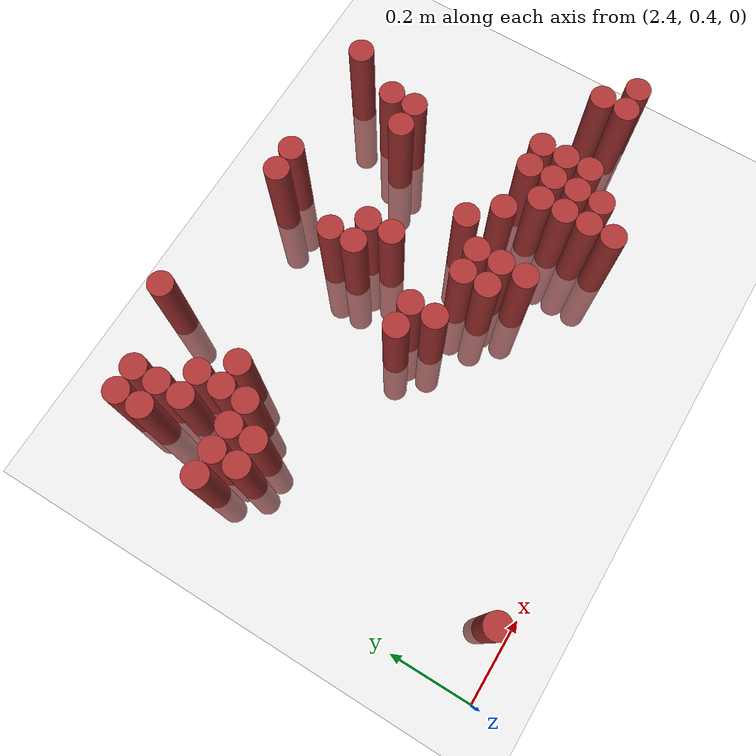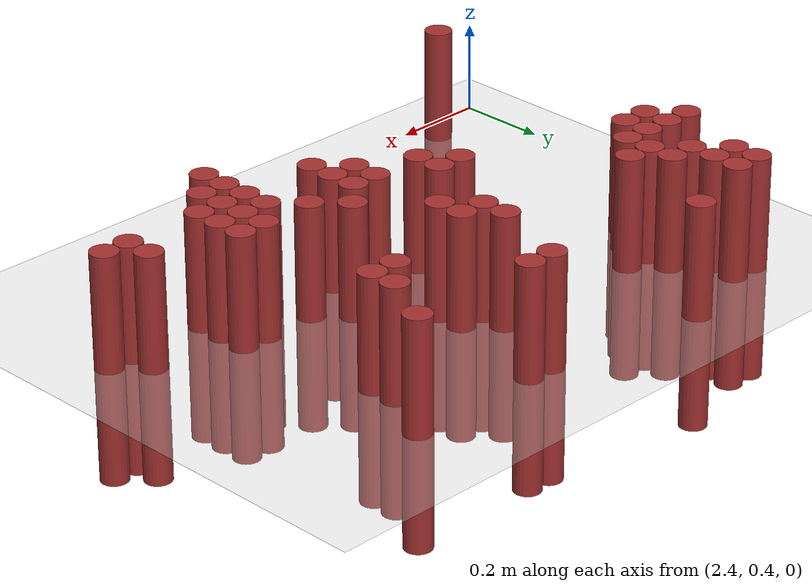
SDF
<sdf version="1.6">
 <world name="default">
  <model name="ground_plane">
   <static>1</static>
   <link name="link">
    <collision name="collision">
     <geometry><plane><normal>0 0 1</normal><size>100 100</size></plane></geometry>
     <surface><friction><ode><mu>100</mu><mu2>50</mu2></ode></friction></surface>
    </collision>
    <visual name="visual">
     <cast_shadows>0</cast_shadows>
     <geometry><plane><normal>0 0 1</normal><size>100 100</size></plane></geometry>
     <material>
      <script><uri>file://media/materials/scripts/gazebo.material</uri><name>Gazebo/Grey</name></script>
     </material>
    </visual>
   </link>
  </model>
  <model name="unit_cylinder_154">
   <static>1</static>
   <pose>2.790000 1.410000 0.000000 0.000000 0.000000 0.000000</pose>
   <link name="link">
    <inertial>
     <mass>1</mass>
     <inertia><ixx>0.145833</ixx><ixy>0</ixy><ixz>0</ixz><iyy>0.145833</iyy><iyz>0</iyz><izz>0.125</izz></inertia>
    </inertial>
    <collision name="collision">
     <geometry><cylinder><radius>0.030000</radius><length>0.5</length></cylinder></geometry>
    </collision>
    <visual name="visual">
     <geometry><cylinder><radius>0.030000</radius><length>0.5</length></cylinder></geometry>
     <material>
      <ambient>0.648000 0.192000 0.192000 1</ambient>
      <diffuse>0.648000 0.192000 0.192000 1</diffuse>
     </material>
     <material>
      <script><name>Gazebo/Grey</name><uri>file://media/materials/scripts/gazebo.material</uri></script>
     </material>
    </visual>
   </link>
  </model>
  <model name="unit_cylinder_160">
   <static>1</static>
   <pose>2.550000 1.350000 0.000000 0.000000 0.000000 0.000000</pose>
   <link name="link">
    <inertial>
     <mass>1</mass>
     <inertia><ixx>0.145833</ixx><ixy>0</ixy><ixz>0</ixz><iyy>0.145833</iyy><iyz>0</iyz><izz>0.125</izz></inertia>
    </inertial>
    <collision name="collision">
     <geometry><cylinder><radius>0.030000</radius><length>0.5</length></cylinder></geometry>
    </collision>
    <visual name="visual">
     <geometry><cylinder><radius>0.030000</radius><length>0.5</length></cylinder></geometry>
     <material>
      <ambient>0.648000 0.192000 0.192000 1</ambient>
      <diffuse>0.648000 0.192000 0.192000 1</diffuse>
     </material>
     <material>
      <script><name>Gazebo/Grey</name><uri>file://media/materials/scripts/gazebo.material</uri></script>
     </material>
    </visual>
   </link>
  </model>
  <model name="unit_cylinder_161">
   <static>1</static>
   <pose>2.610000 1.350000 0.000000 0.000000 0.000000 0.000000</pose>
   <link name="link">
    <inertial>
     <mass>1</mass>
     <inertia><ixx>0.145833</ixx><ixy>0</ixy><ixz>0</ixz><iyy>0.145833</iyy><iyz>0</iyz><izz>0.125</izz></inertia>
    </inertial>
    <collision name="collision">
     <geometry><cylinder><radius>0.030000</radius><length>0.5</length></cylinder></geometry>
    </collision>
    <visual name="visual">
     <geometry><cylinder><radius>0.030000</radius><length>0.5</length></cylinder></geometry>
     <material>
      <ambient>0.648000 0.192000 0.192000 1</ambient>
      <diffuse>0.648000 0.192000 0.192000 1</diffuse>
     </material>
     <material>
      <script><name>Gazebo/Grey</name><uri>file://media/materials/scripts/gazebo.material</uri></script>
     </material>
    </visual>
   </link>
  </model>
  <model name="unit_cylinder_162">
   <static>1</static>
   <pose>3.150000 1.350000 0.000000 0.000000 0.000000 0.000000</pose>
   <link name="link">
    <inertial>
     <mass>1</mass>
     <inertia><ixx>0.145833</ixx><ixy>0</ixy><ixz>0</ixz><iyy>0.145833</iyy><iyz>0</iyz><izz>0.125</izz></inertia>
    </inertial>
    <collision name="collision">
     <geometry><cylinder><radius>0.030000</radius><length>0.5</length></cylinder></geometry>
    </collision>
    <visual name="visual">
     <geometry><cylinder><radius>0.030000</radius><length>0.5</length></cylinder></geometry>
     <material>
      <ambient>0.648000 0.192000 0.192000 1</ambient>
      <diffuse>0.648000 0.192000 0.192000 1</diffuse>
     </material>
     <material>
      <script><name>Gazebo/Grey</name><uri>file://media/materials/scripts/gazebo.material</uri></script>
     </material>
    </visual>
   </link>
  </model>
  <model name="unit_cylinder_163">
   <static>1</static>
   <pose>3.210000 1.350000 0.000000 0.000000 0.000000 0.000000</pose>
   <link name="link">
    <inertial>
     <mass>1</mass>
     <inertia><ixx>0.145833</ixx><ixy>0</ixy><ixz>0</ixz><iyy>0.145833</iyy><iyz>0</iyz><izz>0.125</izz></inertia>
    </inertial>
    <collision name="collision">
     <geometry><cylinder><radius>0.030000</radius><length>0.5</length></cylinder></geometry>
    </collision>
    <visual name="visual">
     <geometry><cylinder><radius>0.030000</radius><length>0.5</length></cylinder></geometry>
     <material>
      <ambient>0.648000 0.192000 0.192000 1</ambient>
      <diffuse>0.648000 0.192000 0.192000 1</diffuse>
     </material>
     <material>
      <script><name>Gazebo/Grey</name><uri>file://media/materials/scripts/gazebo.material</uri></script>
     </material>
    </visual>
   </link>
  </model>
  <model name="unit_cylinder_164">
   <static>1</static>
   <pose>3.510000 1.350000 0.000000 0.000000 0.000000 0.000000</pose>
   <link name="link">
    <inertial>
     <mass>1</mass>
     <inertia><ixx>0.145833</ixx><ixy>0</ixy><ixz>0</ixz><iyy>0.145833</iyy><iyz>0</iyz><izz>0.125</izz></inertia>
    </inertial>
    <collision name="collision">
     <geometry><cylinder><radius>0.030000</radius><length>0.5</length></cylinder></geometry>
    </collision>
    <visual name="visual">
     <geometry><cylinder><radius>0.030000</radius><length>0.5</length></cylinder></geometry>
     <material>
      <ambient>0.648000 0.192000 0.192000 1</ambient>
      <diffuse>0.648000 0.192000 0.192000 1</diffuse>
     </material>
     <material>
      <script><name>Gazebo/Grey</name><uri>file://media/materials/scripts/gazebo.material</uri></script>
     </material>
    </visual>
   </link>
  </model>
  <model name="unit_cylinder_169">
   <static>1</static>
   <pose>2.550000 1.290000 0.000000 0.000000 0.000000 0.000000</pose>
   <link name="link">
    <inertial>
     <mass>1</mass>
     <inertia><ixx>0.145833</ixx><ixy>0</ixy><ixz>0</ixz><iyy>0.145833</iyy><iyz>0</iyz><izz>0.125</izz></inertia>
    </inertial>
    <collision name="collision">
     <geometry><cylinder><radius>0.030000</radius><length>0.5</length></cylinder></geometry>
    </collision>
    <visual name="visual">
     <geometry><cylinder><radius>0.030000</radius><length>0.5</length></cylinder></geometry>
     <material>
      <ambient>0.648000 0.192000 0.192000 1</ambient>
      <diffuse>0.648000 0.192000 0.192000 1</diffuse>
     </material>
     <material>
      <script><name>Gazebo/Grey</name><uri>file://media/materials/scripts/gazebo.material</uri></script>
     </material>
    </visual>
   </link>
  </model>
  <model name="unit_cylinder_170">
   <static>1</static>
   <pose>2.610000 1.290000 0.000000 0.000000 0.000000 0.000000</pose>
   <link name="link">
    <inertial>
     <mass>1</mass>
     <inertia><ixx>0.145833</ixx><ixy>0</ixy><ixz>0</ixz><iyy>0.145833</iyy><iyz>0</iyz><izz>0.125</izz></inertia>
    </inertial>
    <collision name="collision">
     <geometry><cylinder><radius>0.030000</radius><length>0.5</length></cylinder></geometry>
    </collision>
    <visual name="visual">
     <geometry><cylinder><radius>0.030000</radius><length>0.5</length></cylinder></geometry>
     <material>
      <ambient>0.648000 0.192000 0.192000 1</ambient>
      <diffuse>0.648000 0.192000 0.192000 1</diffuse>
     </material>
     <material>
      <script><name>Gazebo/Grey</name><uri>file://media/materials/scripts/gazebo.material</uri></script>
     </material>
    </visual>
   </link>
  </model>
  <model name="unit_cylinder_175">
   <static>1</static>
   <pose>2.610000 1.230000 0.000000 0.000000 0.000000 0.000000</pose>
   <link name="link">
    <inertial>
     <mass>1</mass>
     <inertia><ixx>0.145833</ixx><ixy>0</ixy><ixz>0</ixz><iyy>0.145833</iyy><iyz>0</iyz><izz>0.125</izz></inertia>
    </inertial>
    <collision name="collision">
     <geometry><cylinder><radius>0.030000</radius><length>0.5</length></cylinder></geometry>
    </collision>
    <visual name="visual">
     <geometry><cylinder><radius>0.030000</radius><length>0.5</length></cylinder></geometry>
     <material>
      <ambient>0.648000 0.192000 0.192000 1</ambient>
      <diffuse>0.648000 0.192000 0.192000 1</diffuse>
     </material>
     <material>
      <script><name>Gazebo/Grey</name><uri>file://media/materials/scripts/gazebo.material</uri></script>
     </material>
    </visual>
   </link>
  </model>
  <model name="unit_cylinder_176">
   <static>1</static>
   <pose>2.670000 1.230000 0.000000 0.000000 0.000000 0.000000</pose>
   <link name="link">
    <inertial>
     <mass>1</mass>
     <inertia><ixx>0.145833</ixx><ixy>0</ixy><ixz>0</ixz><iyy>0.145833</iyy><iyz>0</iyz><izz>0.125</izz></inertia>
    </inertial>
    <collision name="collision">
     <geometry><cylinder><radius>0.030000</radius><length>0.5</length></cylinder></geometry>
    </collision>
    <visual name="visual">
     <geometry><cylinder><radius>0.030000</radius><length>0.5</length></cylinder></geometry>
     <material>
      <ambient>0.648000 0.192000 0.192000 1</ambient>
      <diffuse>0.648000 0.192000 0.192000 1</diffuse>
     </material>
     <material>
      <script><name>Gazebo/Grey</name><uri>file://media/materials/scripts/gazebo.material</uri></script>
     </material>
    </visual>
   </link>
  </model>
  <model name="unit_cylinder_177">
   <static>1</static>
   <pose>3.450000 1.230000 0.000000 0.000000 0.000000 0.000000</pose>
   <link name="link">
    <inertial>
     <mass>1</mass>
     <inertia><ixx>0.145833</ixx><ixy>0</ixy><ixz>0</ixz><iyy>0.145833</iyy><iyz>0</iyz><izz>0.125</izz></inertia>
    </inertial>
    <collision name="collision">
     <geometry><cylinder><radius>0.030000</radius><length>0.5</length></cylinder></geometry>
    </collision>
    <visual name="visual">
     <geometry><cylinder><radius>0.030000</radius><length>0.5</length></cylinder></geometry>
     <material>
      <ambient>0.648000 0.192000 0.192000 1</ambient>
      <diffuse>0.648000 0.192000 0.192000 1</diffuse>
     </material>
     <material>
      <script><name>Gazebo/Grey</name><uri>file://media/materials/scripts/gazebo.material</uri></script>
     </material>
    </visual>
   </link>
  </model>
  <model name="unit_cylinder_181">
   <static>1</static>
   <pose>2.670000 1.170000 0.000000 0.000000 0.000000 0.000000</pose>
   <link name="link">
    <inertial>
     <mass>1</mass>
     <inertia><ixx>0.145833</ixx><ixy>0</ixy><ixz>0</ixz><iyy>0.145833</iyy><iyz>0</iyz><izz>0.125</izz></inertia>
    </inertial>
    <collision name="collision">
     <geometry><cylinder><radius>0.030000</radius><length>0.5</length></cylinder></geometry>
    </collision>
    <visual name="visual">
     <geometry><cylinder><radius>0.030000</radius><length>0.5</length></cylinder></geometry>
     <material>
      <ambient>0.648000 0.192000 0.192000 1</ambient>
      <diffuse>0.648000 0.192000 0.192000 1</diffuse>
     </material>
     <material>
      <script><name>Gazebo/Grey</name><uri>file://media/materials/scripts/gazebo.material</uri></script>
     </material>
    </visual>
   </link>
  </model>
  <model name="unit_cylinder_182">
   <static>1</static>
   <pose>2.730000 1.170000 0.000000 0.000000 0.000000 0.000000</pose>
   <link name="link">
    <inertial>
     <mass>1</mass>
     <inertia><ixx>0.145833</ixx><ixy>0</ixy><ixz>0</ixz><iyy>0.145833</iyy><iyz>0</iyz><izz>0.125</izz></inertia>
    </inertial>
    <collision name="collision">
     <geometry><cylinder><radius>0.030000</radius><length>0.5</length></cylinder></geometry>
    </collision>
    <visual name="visual">
     <geometry><cylinder><radius>0.030000</radius><length>0.5</length></cylinder></geometry>
     <material>
      <ambient>0.648000 0.192000 0.192000 1</ambient>
      <diffuse>0.648000 0.192000 0.192000 1</diffuse>
     </material>
     <material>
      <script><name>Gazebo/Grey</name><uri>file://media/materials/scripts/gazebo.material</uri></script>
     </material>
    </visual>
   </link>
  </model>
  <model name="unit_cylinder_183">
   <static>1</static>
   <pose>3.090000 1.170000 0.000000 0.000000 0.000000 0.000000</pose>
   <link name="link">
    <inertial>
     <mass>1</mass>
     <inertia><ixx>0.145833</ixx><ixy>0</ixy><ixz>0</ixz><iyy>0.145833</iyy><iyz>0</iyz><izz>0.125</izz></inertia>
    </inertial>
    <collision name="collision">
     <geometry><cylinder><radius>0.030000</radius><length>0.5</length></cylinder></geometry>
    </collision>
    <visual name="visual">
     <geometry><cylinder><radius>0.030000</radius><length>0.5</length></cylinder></geometry>
     <material>
      <ambient>0.648000 0.192000 0.192000 1</ambient>
      <diffuse>0.648000 0.192000 0.192000 1</diffuse>
     </material>
     <material>
      <script><name>Gazebo/Grey</name><uri>file://media/materials/scripts/gazebo.material</uri></script>
     </material>
    </visual>
   </link>
  </model>
  <model name="unit_cylinder_184">
   <static>1</static>
   <pose>3.390000 1.170000 0.000000 0.000000 0.000000 0.000000</pose>
   <link name="link">
    <inertial>
     <mass>1</mass>
     <inertia><ixx>0.145833</ixx><ixy>0</ixy><ixz>0</ixz><iyy>0.145833</iyy><iyz>0</iyz><izz>0.125</izz></inertia>
    </inertial>
    <collision name="collision">
     <geometry><cylinder><radius>0.030000</radius><length>0.5</length></cylinder></geometry>
    </collision>
    <visual name="visual">
     <geometry><cylinder><radius>0.030000</radius><length>0.5</length></cylinder></geometry>
     <material>
      <ambient>0.648000 0.192000 0.192000 1</ambient>
      <diffuse>0.648000 0.192000 0.192000 1</diffuse>
     </material>
     <material>
      <script><name>Gazebo/Grey</name><uri>file://media/materials/scripts/gazebo.material</uri></script>
     </material>
    </visual>
   </link>
  </model>
  <model name="unit_cylinder_185">
   <static>1</static>
   <pose>3.450000 1.170000 0.000000 0.000000 0.000000 0.000000</pose>
   <link name="link">
    <inertial>
     <mass>1</mass>
     <inertia><ixx>0.145833</ixx><ixy>0</ixy><ixz>0</ixz><iyy>0.145833</iyy><iyz>0</iyz><izz>0.125</izz></inertia>
    </inertial>
    <collision name="collision">
     <geometry><cylinder><radius>0.030000</radius><length>0.5</length></cylinder></geometry>
    </collision>
    <visual name="visual">
     <geometry><cylinder><radius>0.030000</radius><length>0.5</length></cylinder></geometry>
     <material>
      <ambient>0.648000 0.192000 0.192000 1</ambient>
      <diffuse>0.648000 0.192000 0.192000 1</diffuse>
     </material>
     <material>
      <script><name>Gazebo/Grey</name><uri>file://media/materials/scripts/gazebo.material</uri></script>
     </material>
    </visual>
   </link>
  </model>
  <model name="unit_cylinder_190">
   <static>1</static>
   <pose>2.490000 1.110000 0.000000 0.000000 0.000000 0.000000</pose>
   <link name="link">
    <inertial>
     <mass>1</mass>
     <inertia><ixx>0.145833</ixx><ixy>0</ixy><ixz>0</ixz><iyy>0.145833</iyy><iyz>0</iyz><izz>0.125</izz></inertia>
    </inertial>
    <collision name="collision">
     <geometry><cylinder><radius>0.030000</radius><length>0.5</length></cylinder></geometry>
    </collision>
    <visual name="visual">
     <geometry><cylinder><radius>0.030000</radius><length>0.5</length></cylinder></geometry>
     <material>
      <ambient>0.648000 0.192000 0.192000 1</ambient>
      <diffuse>0.648000 0.192000 0.192000 1</diffuse>
     </material>
     <material>
      <script><name>Gazebo/Grey</name><uri>file://media/materials/scripts/gazebo.material</uri></script>
     </material>
    </visual>
   </link>
  </model>
  <model name="unit_cylinder_191">
   <static>1</static>
   <pose>2.550000 1.110000 0.000000 0.000000 0.000000 0.000000</pose>
   <link name="link">
    <inertial>
     <mass>1</mass>
     <inertia><ixx>0.145833</ixx><ixy>0</ixy><ixz>0</ixz><iyy>0.145833</iyy><iyz>0</iyz><izz>0.125</izz></inertia>
    </inertial>
    <collision name="collision">
     <geometry><cylinder><radius>0.030000</radius><length>0.5</length></cylinder></geometry>
    </collision>
    <visual name="visual">
     <geometry><cylinder><radius>0.030000</radius><length>0.5</length></cylinder></geometry>
     <material>
      <ambient>0.648000 0.192000 0.192000 1</ambient>
      <diffuse>0.648000 0.192000 0.192000 1</diffuse>
     </material>
     <material>
      <script><name>Gazebo/Grey</name><uri>file://media/materials/scripts/gazebo.material</uri></script>
     </material>
    </visual>
   </link>
  </model>
  <model name="unit_cylinder_192">
   <static>1</static>
   <pose>2.610000 1.110000 0.000000 0.000000 0.000000 0.000000</pose>
   <link name="link">
    <inertial>
     <mass>1</mass>
     <inertia><ixx>0.145833</ixx><ixy>0</ixy><ixz>0</ixz><iyy>0.145833</iyy><iyz>0</iyz><izz>0.125</izz></inertia>
    </inertial>
    <collision name="collision">
     <geometry><cylinder><radius>0.030000</radius><length>0.5</length></cylinder></geometry>
    </collision>
    <visual name="visual">
     <geometry><cylinder><radius>0.030000</radius><length>0.5</length></cylinder></geometry>
     <material>
      <ambient>0.648000 0.192000 0.192000 1</ambient>
      <diffuse>0.648000 0.192000 0.192000 1</diffuse>
     </material>
     <material>
      <script><name>Gazebo/Grey</name><uri>file://media/materials/scripts/gazebo.material</uri></script>
     </material>
    </visual>
   </link>
  </model>
  <model name="unit_cylinder_193">
   <static>1</static>
   <pose>2.670000 1.110000 0.000000 0.000000 0.000000 0.000000</pose>
   <link name="link">
    <inertial>
     <mass>1</mass>
     <inertia><ixx>0.145833</ixx><ixy>0</ixy><ixz>0</ixz><iyy>0.145833</iyy><iyz>0</iyz><izz>0.125</izz></inertia>
    </inertial>
    <collision name="collision">
     <geometry><cylinder><radius>0.030000</radius><length>0.5</length></cylinder></geometry>
    </collision>
    <visual name="visual">
     <geometry><cylinder><radius>0.030000</radius><length>0.5</length></cylinder></geometry>
     <material>
      <ambient>0.648000 0.192000 0.192000 1</ambient>
      <diffuse>0.648000 0.192000 0.192000 1</diffuse>
     </material>
     <material>
      <script><name>Gazebo/Grey</name><uri>file://media/materials/scripts/gazebo.material</uri></script>
     </material>
    </visual>
   </link>
  </model>
  <model name="unit_cylinder_194">
   <static>1</static>
   <pose>3.090000 1.110000 0.000000 0.000000 0.000000 0.000000</pose>
   <link name="link">
    <inertial>
     <mass>1</mass>
     <inertia><ixx>0.145833</ixx><ixy>0</ixy><ixz>0</ixz><iyy>0.145833</iyy><iyz>0</iyz><izz>0.125</izz></inertia>
    </inertial>
    <collision name="collision">
     <geometry><cylinder><radius>0.030000</radius><length>0.5</length></cylinder></geometry>
    </collision>
    <visual name="visual">
     <geometry><cylinder><radius>0.030000</radius><length>0.5</length></cylinder></geometry>
     <material>
      <ambient>0.648000 0.192000 0.192000 1</ambient>
      <diffuse>0.648000 0.192000 0.192000 1</diffuse>
     </material>
     <material>
      <script><name>Gazebo/Grey</name><uri>file://media/materials/scripts/gazebo.material</uri></script>
     </material>
    </visual>
   </link>
  </model>
  <model name="unit_cylinder_195">
   <static>1</static>
   <pose>3.150000 1.110000 0.000000 0.000000 0.000000 0.000000</pose>
   <link name="link">
    <inertial>
     <mass>1</mass>
     <inertia><ixx>0.145833</ixx><ixy>0</ixy><ixz>0</ixz><iyy>0.145833</iyy><iyz>0</iyz><izz>0.125</izz></inertia>
    </inertial>
    <collision name="collision">
     <geometry><cylinder><radius>0.030000</radius><length>0.5</length></cylinder></geometry>
    </collision>
    <visual name="visual">
     <geometry><cylinder><radius>0.030000</radius><length>0.5</length></cylinder></geometry>
     <material>
      <ambient>0.648000 0.192000 0.192000 1</ambient>
      <diffuse>0.648000 0.192000 0.192000 1</diffuse>
     </material>
     <material>
      <script><name>Gazebo/Grey</name><uri>file://media/materials/scripts/gazebo.material</uri></script>
     </material>
    </visual>
   </link>
  </model>
  <model name="unit_cylinder_197">
   <static>1</static>
   <pose>2.550000 1.050000 0.000000 0.000000 0.000000 0.000000</pose>
   <link name="link">
    <inertial>
     <mass>1</mass>
     <inertia><ixx>0.145833</ixx><ixy>0</ixy><ixz>0</ixz><iyy>0.145833</iyy><iyz>0</iyz><izz>0.125</izz></inertia>
    </inertial>
    <collision name="collision">
     <geometry><cylinder><radius>0.030000</radius><length>0.5</length></cylinder></geometry>
    </collision>
    <visual name="visual">
     <geometry><cylinder><radius>0.030000</radius><length>0.5</length></cylinder></geometry>
     <material>
      <ambient>0.648000 0.192000 0.192000 1</ambient>
      <diffuse>0.648000 0.192000 0.192000 1</diffuse>
     </material>
     <material>
      <script><name>Gazebo/Grey</name><uri>file://media/materials/scripts/gazebo.material</uri></script>
     </material>
    </visual>
   </link>
  </model>
  <model name="unit_cylinder_198">
   <static>1</static>
   <pose>2.610000 1.050000 0.000000 0.000000 0.000000 0.000000</pose>
   <link name="link">
    <inertial>
     <mass>1</mass>
     <inertia><ixx>0.145833</ixx><ixy>0</ixy><ixz>0</ixz><iyy>0.145833</iyy><iyz>0</iyz><izz>0.125</izz></inertia>
    </inertial>
    <collision name="collision">
     <geometry><cylinder><radius>0.030000</radius><length>0.5</length></cylinder></geometry>
    </collision>
    <visual name="visual">
     <geometry><cylinder><radius>0.030000</radius><length>0.5</length></cylinder></geometry>
     <material>
      <ambient>0.648000 0.192000 0.192000 1</ambient>
      <diffuse>0.648000 0.192000 0.192000 1</diffuse>
     </material>
     <material>
      <script><name>Gazebo/Grey</name><uri>file://media/materials/scripts/gazebo.material</uri></script>
     </material>
    </visual>
   </link>
  </model>
  <model name="unit_cylinder_199">
   <static>1</static>
   <pose>3.150000 1.050000 0.000000 0.000000 0.000000 0.000000</pose>
   <link name="link">
    <inertial>
     <mass>1</mass>
     <inertia><ixx>0.145833</ixx><ixy>0</ixy><ixz>0</ixz><iyy>0.145833</iyy><iyz>0</iyz><izz>0.125</izz></inertia>
    </inertial>
    <collision name="collision">
     <geometry><cylinder><radius>0.030000</radius><length>0.5</length></cylinder></geometry>
    </collision>
    <visual name="visual">
     <geometry><cylinder><radius>0.030000</radius><length>0.5</length></cylinder></geometry>
     <material>
      <ambient>0.648000 0.192000 0.192000 1</ambient>
      <diffuse>0.648000 0.192000 0.192000 1</diffuse>
     </material>
     <material>
      <script><name>Gazebo/Grey</name><uri>file://media/materials/scripts/gazebo.material</uri></script>
     </material>
    </visual>
   </link>
  </model>
  <model name="unit_cylinder_204">
   <static>1</static>
   <pose>2.970000 0.930000 0.000000 0.000000 0.000000 0.000000</pose>
   <link name="link">
    <inertial>
     <mass>1</mass>
     <inertia><ixx>0.145833</ixx><ixy>0</ixy><ixz>0</ixz><iyy>0.145833</iyy><iyz>0</iyz><izz>0.125</izz></inertia>
    </inertial>
    <collision name="collision">
     <geometry><cylinder><radius>0.030000</radius><length>0.5</length></cylinder></geometry>
    </collision>
    <visual name="visual">
     <geometry><cylinder><radius>0.030000</radius><length>0.5</length></cylinder></geometry>
     <material>
      <ambient>0.648000 0.192000 0.192000 1</ambient>
      <diffuse>0.648000 0.192000 0.192000 1</diffuse>
     </material>
     <material>
      <script><name>Gazebo/Grey</name><uri>file://media/materials/scripts/gazebo.material</uri></script>
     </material>
    </visual>
   </link>
  </model>
  <model name="unit_cylinder_205">
   <static>1</static>
   <pose>3.030000 0.930000 0.000000 0.000000 0.000000 0.000000</pose>
   <link name="link">
    <inertial>
     <mass>1</mass>
     <inertia><ixx>0.145833</ixx><ixy>0</ixy><ixz>0</ixz><iyy>0.145833</iyy><iyz>0</iyz><izz>0.125</izz></inertia>
    </inertial>
    <collision name="collision">
     <geometry><cylinder><radius>0.030000</radius><length>0.5</length></cylinder></geometry>
    </collision>
    <visual name="visual">
     <geometry><cylinder><radius>0.030000</radius><length>0.5</length></cylinder></geometry>
     <material>
      <ambient>0.648000 0.192000 0.192000 1</ambient>
      <diffuse>0.648000 0.192000 0.192000 1</diffuse>
     </material>
     <material>
      <script><name>Gazebo/Grey</name><uri>file://media/materials/scripts/gazebo.material</uri></script>
     </material>
    </visual>
   </link>
  </model>
  <model name="unit_cylinder_206">
   <static>1</static>
   <pose>3.270000 0.930000 0.000000 0.000000 0.000000 0.000000</pose>
   <link name="link">
    <inertial>
     <mass>1</mass>
     <inertia><ixx>0.145833</ixx><ixy>0</ixy><ixz>0</ixz><iyy>0.145833</iyy><iyz>0</iyz><izz>0.125</izz></inertia>
    </inertial>
    <collision name="collision">
     <geometry><cylinder><radius>0.030000</radius><length>0.5</length></cylinder></geometry>
    </collision>
    <visual name="visual">
     <geometry><cylinder><radius>0.030000</radius><length>0.5</length></cylinder></geometry>
     <material>
      <ambient>0.648000 0.192000 0.192000 1</ambient>
      <diffuse>0.648000 0.192000 0.192000 1</diffuse>
     </material>
     <material>
      <script><name>Gazebo/Grey</name><uri>file://media/materials/scripts/gazebo.material</uri></script>
     </material>
    </visual>
   </link>
  </model>
  <model name="unit_cylinder_208">
   <static>1</static>
   <pose>3.030000 0.870000 0.000000 0.000000 0.000000 0.000000</pose>
   <link name="link">
    <inertial>
     <mass>1</mass>
     <inertia><ixx>0.145833</ixx><ixy>0</ixy><ixz>0</ixz><iyy>0.145833</iyy><iyz>0</iyz><izz>0.125</izz></inertia>
    </inertial>
    <collision name="collision">
     <geometry><cylinder><radius>0.030000</radius><length>0.5</length></cylinder></geometry>
    </collision>
    <visual name="visual">
     <geometry><cylinder><radius>0.030000</radius><length>0.5</length></cylinder></geometry>
     <material>
      <ambient>0.648000 0.192000 0.192000 1</ambient>
      <diffuse>0.648000 0.192000 0.192000 1</diffuse>
     </material>
     <material>
      <script><name>Gazebo/Grey</name><uri>file://media/materials/scripts/gazebo.material</uri></script>
     </material>
    </visual>
   </link>
  </model>
  <model name="unit_cylinder_209">
   <static>1</static>
   <pose>3.150000 0.870000 0.000000 0.000000 0.000000 0.000000</pose>
   <link name="link">
    <inertial>
     <mass>1</mass>
     <inertia><ixx>0.145833</ixx><ixy>0</ixy><ixz>0</ixz><iyy>0.145833</iyy><iyz>0</iyz><izz>0.125</izz></inertia>
    </inertial>
    <collision name="collision">
     <geometry><cylinder><radius>0.030000</radius><length>0.5</length></cylinder></geometry>
    </collision>
    <visual name="visual">
     <geometry><cylinder><radius>0.030000</radius><length>0.5</length></cylinder></geometry>
     <material>
      <ambient>0.648000 0.192000 0.192000 1</ambient>
      <diffuse>0.648000 0.192000 0.192000 1</diffuse>
     </material>
     <material>
      <script><name>Gazebo/Grey</name><uri>file://media/materials/scripts/gazebo.material</uri></script>
     </material>
    </visual>
   </link>
  </model>
  <model name="unit_cylinder_210">
   <static>1</static>
   <pose>3.210000 0.870000 0.000000 0.000000 0.000000 0.000000</pose>
   <link name="link">
    <inertial>
     <mass>1</mass>
     <inertia><ixx>0.145833</ixx><ixy>0</ixy><ixz>0</ixz><iyy>0.145833</iyy><iyz>0</iyz><izz>0.125</izz></inertia>
    </inertial>
    <collision name="collision">
     <geometry><cylinder><radius>0.030000</radius><length>0.5</length></cylinder></geometry>
    </collision>
    <visual name="visual">
     <geometry><cylinder><radius>0.030000</radius><length>0.5</length></cylinder></geometry>
     <material>
      <ambient>0.648000 0.192000 0.192000 1</ambient>
      <diffuse>0.648000 0.192000 0.192000 1</diffuse>
     </material>
     <material>
      <script><name>Gazebo/Grey</name><uri>file://media/materials/scripts/gazebo.material</uri></script>
     </material>
    </visual>
   </link>
  </model>
  <model name="unit_cylinder_211">
   <static>1</static>
   <pose>3.330000 0.870000 0.000000 0.000000 0.000000 0.000000</pose>
   <link name="link">
    <inertial>
     <mass>1</mass>
     <inertia><ixx>0.145833</ixx><ixy>0</ixy><ixz>0</ixz><iyy>0.145833</iyy><iyz>0</iyz><izz>0.125</izz></inertia>
    </inertial>
    <collision name="collision">
     <geometry><cylinder><radius>0.030000</radius><length>0.5</length></cylinder></geometry>
    </collision>
    <visual name="visual">
     <geometry><cylinder><radius>0.030000</radius><length>0.5</length></cylinder></geometry>
     <material>
      <ambient>0.648000 0.192000 0.192000 1</ambient>
      <diffuse>0.648000 0.192000 0.192000 1</diffuse>
     </material>
     <material>
      <script><name>Gazebo/Grey</name><uri>file://media/materials/scripts/gazebo.material</uri></script>
     </material>
    </visual>
   </link>
  </model>
  <model name="unit_cylinder_212">
   <static>1</static>
   <pose>3.450000 0.870000 0.000000 0.000000 0.000000 0.000000</pose>
   <link name="link">
    <inertial>
     <mass>1</mass>
     <inertia><ixx>0.145833</ixx><ixy>0</ixy><ixz>0</ixz><iyy>0.145833</iyy><iyz>0</iyz><izz>0.125</izz></inertia>
    </inertial>
    <collision name="collision">
     <geometry><cylinder><radius>0.030000</radius><length>0.5</length></cylinder></geometry>
    </collision>
    <visual name="visual">
     <geometry><cylinder><radius>0.030000</radius><length>0.5</length></cylinder></geometry>
     <material>
      <ambient>0.648000 0.192000 0.192000 1</ambient>
      <diffuse>0.648000 0.192000 0.192000 1</diffuse>
     </material>
     <material>
      <script><name>Gazebo/Grey</name><uri>file://media/materials/scripts/gazebo.material</uri></script>
     </material>
    </visual>
   </link>
  </model>
  <model name="unit_cylinder_213">
   <static>1</static>
   <pose>3.510000 0.870000 0.000000 0.000000 0.000000 0.000000</pose>
   <link name="link">
    <inertial>
     <mass>1</mass>
     <inertia><ixx>0.145833</ixx><ixy>0</ixy><ixz>0</ixz><iyy>0.145833</iyy><iyz>0</iyz><izz>0.125</izz></inertia>
    </inertial>
    <collision name="collision">
     <geometry><cylinder><radius>0.030000</radius><length>0.5</length></cylinder></geometry>
    </collision>
    <visual name="visual">
     <geometry><cylinder><radius>0.030000</radius><length>0.5</length></cylinder></geometry>
     <material>
      <ambient>0.648000 0.192000 0.192000 1</ambient>
      <diffuse>0.648000 0.192000 0.192000 1</diffuse>
     </material>
     <material>
      <script><name>Gazebo/Grey</name><uri>file://media/materials/scripts/gazebo.material</uri></script>
     </material>
    </visual>
   </link>
  </model>
  <model name="unit_cylinder_214">
   <static>1</static>
   <pose>3.150000 0.810000 0.000000 0.000000 0.000000 0.000000</pose>
   <link name="link">
    <inertial>
     <mass>1</mass>
     <inertia><ixx>0.145833</ixx><ixy>0</ixy><ixz>0</ixz><iyy>0.145833</iyy><iyz>0</iyz><izz>0.125</izz></inertia>
    </inertial>
    <collision name="collision">
     <geometry><cylinder><radius>0.030000</radius><length>0.5</length></cylinder></geometry>
    </collision>
    <visual name="visual">
     <geometry><cylinder><radius>0.030000</radius><length>0.5</length></cylinder></geometry>
     <material>
      <ambient>0.648000 0.192000 0.192000 1</ambient>
      <diffuse>0.648000 0.192000 0.192000 1</diffuse>
     </material>
     <material>
      <script><name>Gazebo/Grey</name><uri>file://media/materials/scripts/gazebo.material</uri></script>
     </material>
    </visual>
   </link>
  </model>
  <model name="unit_cylinder_215">
   <static>1</static>
   <pose>3.210000 0.810000 0.000000 0.000000 0.000000 0.000000</pose>
   <link name="link">
    <inertial>
     <mass>1</mass>
     <inertia><ixx>0.145833</ixx><ixy>0</ixy><ixz>0</ixz><iyy>0.145833</iyy><iyz>0</iyz><izz>0.125</izz></inertia>
    </inertial>
    <collision name="collision">
     <geometry><cylinder><radius>0.030000</radius><length>0.5</length></cylinder></geometry>
    </collision>
    <visual name="visual">
     <geometry><cylinder><radius>0.030000</radius><length>0.5</length></cylinder></geometry>
     <material>
      <ambient>0.648000 0.192000 0.192000 1</ambient>
      <diffuse>0.648000 0.192000 0.192000 1</diffuse>
     </material>
     <material>
      <script><name>Gazebo/Grey</name><uri>file://media/materials/scripts/gazebo.material</uri></script>
     </material>
    </visual>
   </link>
  </model>
  <model name="unit_cylinder_216">
   <static>1</static>
   <pose>3.390000 0.810000 0.000000 0.000000 0.000000 0.000000</pose>
   <link name="link">
    <inertial>
     <mass>1</mass>
     <inertia><ixx>0.145833</ixx><ixy>0</ixy><ixz>0</ixz><iyy>0.145833</iyy><iyz>0</iyz><izz>0.125</izz></inertia>
    </inertial>
    <collision name="collision">
     <geometry><cylinder><radius>0.030000</radius><length>0.5</length></cylinder></geometry>
    </collision>
    <visual name="visual">
     <geometry><cylinder><radius>0.030000</radius><length>0.5</length></cylinder></geometry>
     <material>
      <ambient>0.648000 0.192000 0.192000 1</ambient>
      <diffuse>0.648000 0.192000 0.192000 1</diffuse>
     </material>
     <material>
      <script><name>Gazebo/Grey</name><uri>file://media/materials/scripts/gazebo.material</uri></script>
     </material>
    </visual>
   </link>
  </model>
  <model name="unit_cylinder_217">
   <static>1</static>
   <pose>3.450000 0.810000 0.000000 0.000000 0.000000 0.000000</pose>
   <link name="link">
    <inertial>
     <mass>1</mass>
     <inertia><ixx>0.145833</ixx><ixy>0</ixy><ixz>0</ixz><iyy>0.145833</iyy><iyz>0</iyz><izz>0.125</izz></inertia>
    </inertial>
    <collision name="collision">
     <geometry><cylinder><radius>0.030000</radius><length>0.5</length></cylinder></geometry>
    </collision>
    <visual name="visual">
     <geometry><cylinder><radius>0.030000</radius><length>0.5</length></cylinder></geometry>
     <material>
      <ambient>0.648000 0.192000 0.192000 1</ambient>
      <diffuse>0.648000 0.192000 0.192000 1</diffuse>
     </material>
     <material>
      <script><name>Gazebo/Grey</name><uri>file://media/materials/scripts/gazebo.material</uri></script>
     </material>
    </visual>
   </link>
  </model>
  <model name="unit_cylinder_218">
   <static>1</static>
   <pose>3.510000 0.810000 0.000000 0.000000 0.000000 0.000000</pose>
   <link name="link">
    <inertial>
     <mass>1</mass>
     <inertia><ixx>0.145833</ixx><ixy>0</ixy><ixz>0</ixz><iyy>0.145833</iyy><iyz>0</iyz><izz>0.125</izz></inertia>
    </inertial>
    <collision name="collision">
     <geometry><cylinder><radius>0.030000</radius><length>0.5</length></cylinder></geometry>
    </collision>
    <visual name="visual">
     <geometry><cylinder><radius>0.030000</radius><length>0.5</length></cylinder></geometry>
     <material>
      <ambient>0.648000 0.192000 0.192000 1</ambient>
      <diffuse>0.648000 0.192000 0.192000 1</diffuse>
     </material>
     <material>
      <script><name>Gazebo/Grey</name><uri>file://media/materials/scripts/gazebo.material</uri></script>
     </material>
    </visual>
   </link>
  </model>
  <model name="unit_cylinder_219">
   <static>1</static>
   <pose>3.690000 0.810000 0.000000 0.000000 0.000000 0.000000</pose>
   <link name="link">
    <inertial>
     <mass>1</mass>
     <inertia><ixx>0.145833</ixx><ixy>0</ixy><ixz>0</ixz><iyy>0.145833</iyy><iyz>0</iyz><izz>0.125</izz></inertia>
    </inertial>
    <collision name="collision">
     <geometry><cylinder><radius>0.030000</radius><length>0.5</length></cylinder></geometry>
    </collision>
    <visual name="visual">
     <geometry><cylinder><radius>0.030000</radius><length>0.5</length></cylinder></geometry>
     <material>
      <ambient>0.648000 0.192000 0.192000 1</ambient>
      <diffuse>0.648000 0.192000 0.192000 1</diffuse>
     </material>
     <material>
      <script><name>Gazebo/Grey</name><uri>file://media/materials/scripts/gazebo.material</uri></script>
     </material>
    </visual>
   </link>
  </model>
  <model name="unit_cylinder_220">
   <static>1</static>
   <pose>3.210000 0.750000 0.000000 0.000000 0.000000 0.000000</pose>
   <link name="link">
    <inertial>
     <mass>1</mass>
     <inertia><ixx>0.145833</ixx><ixy>0</ixy><ixz>0</ixz><iyy>0.145833</iyy><iyz>0</iyz><izz>0.125</izz></inertia>
    </inertial>
    <collision name="collision">
     <geometry><cylinder><radius>0.030000</radius><length>0.5</length></cylinder></geometry>
    </collision>
    <visual name="visual">
     <geometry><cylinder><radius>0.030000</radius><length>0.5</length></cylinder></geometry>
     <material>
      <ambient>0.648000 0.192000 0.192000 1</ambient>
      <diffuse>0.648000 0.192000 0.192000 1</diffuse>
     </material>
     <material>
      <script><name>Gazebo/Grey</name><uri>file://media/materials/scripts/gazebo.material</uri></script>
     </material>
    </visual>
   </link>
  </model>
  <model name="unit_cylinder_221">
   <static>1</static>
   <pose>3.390000 0.750000 0.000000 0.000000 0.000000 0.000000</pose>
   <link name="link">
    <inertial>
     <mass>1</mass>
     <inertia><ixx>0.145833</ixx><ixy>0</ixy><ixz>0</ixz><iyy>0.145833</iyy><iyz>0</iyz><izz>0.125</izz></inertia>
    </inertial>
    <collision name="collision">
     <geometry><cylinder><radius>0.030000</radius><length>0.5</length></cylinder></geometry>
    </collision>
    <visual name="visual">
     <geometry><cylinder><radius>0.030000</radius><length>0.5</length></cylinder></geometry>
     <material>
      <ambient>0.648000 0.192000 0.192000 1</ambient>
      <diffuse>0.648000 0.192000 0.192000 1</diffuse>
     </material>
     <material>
      <script><name>Gazebo/Grey</name><uri>file://media/materials/scripts/gazebo.material</uri></script>
     </material>
    </visual>
   </link>
  </model>
  <model name="unit_cylinder_222">
   <static>1</static>
   <pose>3.450000 0.750000 0.000000 0.000000 0.000000 0.000000</pose>
   <link name="link">
    <inertial>
     <mass>1</mass>
     <inertia><ixx>0.145833</ixx><ixy>0</ixy><ixz>0</ixz><iyy>0.145833</iyy><iyz>0</iyz><izz>0.125</izz></inertia>
    </inertial>
    <collision name="collision">
     <geometry><cylinder><radius>0.030000</radius><length>0.5</length></cylinder></geometry>
    </collision>
    <visual name="visual">
     <geometry><cylinder><radius>0.030000</radius><length>0.5</length></cylinder></geometry>
     <material>
      <ambient>0.648000 0.192000 0.192000 1</ambient>
      <diffuse>0.648000 0.192000 0.192000 1</diffuse>
     </material>
     <material>
      <script><name>Gazebo/Grey</name><uri>file://media/materials/scripts/gazebo.material</uri></script>
     </material>
    </visual>
   </link>
  </model>
  <model name="unit_cylinder_223">
   <static>1</static>
   <pose>3.510000 0.750000 0.000000 0.000000 0.000000 0.000000</pose>
   <link name="link">
    <inertial>
     <mass>1</mass>
     <inertia><ixx>0.145833</ixx><ixy>0</ixy><ixz>0</ixz><iyy>0.145833</iyy><iyz>0</iyz><izz>0.125</izz></inertia>
    </inertial>
    <collision name="collision">
     <geometry><cylinder><radius>0.030000</radius><length>0.5</length></cylinder></geometry>
    </collision>
    <visual name="visual">
     <geometry><cylinder><radius>0.030000</radius><length>0.5</length></cylinder></geometry>
     <material>
      <ambient>0.648000 0.192000 0.192000 1</ambient>
      <diffuse>0.648000 0.192000 0.192000 1</diffuse>
     </material>
     <material>
      <script><name>Gazebo/Grey</name><uri>file://media/materials/scripts/gazebo.material</uri></script>
     </material>
    </visual>
   </link>
  </model>
  <model name="unit_cylinder_224">
   <static>1</static>
   <pose>3.690000 0.750000 0.000000 0.000000 0.000000 0.000000</pose>
   <link name="link">
    <inertial>
     <mass>1</mass>
     <inertia><ixx>0.145833</ixx><ixy>0</ixy><ixz>0</ixz><iyy>0.145833</iyy><iyz>0</iyz><izz>0.125</izz></inertia>
    </inertial>
    <collision name="collision">
     <geometry><cylinder><radius>0.030000</radius><length>0.5</length></cylinder></geometry>
    </collision>
    <visual name="visual">
     <geometry><cylinder><radius>0.030000</radius><length>0.5</length></cylinder></geometry>
     <material>
      <ambient>0.648000 0.192000 0.192000 1</ambient>
      <diffuse>0.648000 0.192000 0.192000 1</diffuse>
     </material>
     <material>
      <script><name>Gazebo/Grey</name><uri>file://media/materials/scripts/gazebo.material</uri></script>
     </material>
    </visual>
   </link>
  </model>
  <model name="unit_cylinder_225">
   <static>1</static>
   <pose>3.750000 0.750000 0.000000 0.000000 0.000000 0.000000</pose>
   <link name="link">
    <inertial>
     <mass>1</mass>
     <inertia><ixx>0.145833</ixx><ixy>0</ixy><ixz>0</ixz><iyy>0.145833</iyy><iyz>0</iyz><izz>0.125</izz></inertia>
    </inertial>
    <collision name="collision">
     <geometry><cylinder><radius>0.030000</radius><length>0.5</length></cylinder></geometry>
    </collision>
    <visual name="visual">
     <geometry><cylinder><radius>0.030000</radius><length>0.5</length></cylinder></geometry>
     <material>
      <ambient>0.648000 0.192000 0.192000 1</ambient>
      <diffuse>0.648000 0.192000 0.192000 1</diffuse>
     </material>
     <material>
      <script><name>Gazebo/Grey</name><uri>file://media/materials/scripts/gazebo.material</uri></script>
     </material>
    </visual>
   </link>
  </model>
  <model name="unit_cylinder_226">
   <static>1</static>
   <pose>3.390000 0.690000 0.000000 0.000000 0.000000 0.000000</pose>
   <link name="link">
    <inertial>
     <mass>1</mass>
     <inertia><ixx>0.145833</ixx><ixy>0</ixy><ixz>0</ixz><iyy>0.145833</iyy><iyz>0</iyz><izz>0.125</izz></inertia>
    </inertial>
    <collision name="collision">
     <geometry><cylinder><radius>0.030000</radius><length>0.5</length></cylinder></geometry>
    </collision>
    <visual name="visual">
     <geometry><cylinder><radius>0.030000</radius><length>0.5</length></cylinder></geometry>
     <material>
      <ambient>0.648000 0.192000 0.192000 1</ambient>
      <diffuse>0.648000 0.192000 0.192000 1</diffuse>
     </material>
     <material>
      <script><name>Gazebo/Grey</name><uri>file://media/materials/scripts/gazebo.material</uri></script>
     </material>
    </visual>
   </link>
  </model>
  <model name="unit_cylinder_227">
   <static>1</static>
   <pose>3.450000 0.690000 0.000000 0.000000 0.000000 0.000000</pose>
   <link name="link">
    <inertial>
     <mass>1</mass>
     <inertia><ixx>0.145833</ixx><ixy>0</ixy><ixz>0</ixz><iyy>0.145833</iyy><iyz>0</iyz><izz>0.125</izz></inertia>
    </inertial>
    <collision name="collision">
     <geometry><cylinder><radius>0.030000</radius><length>0.5</length></cylinder></geometry>
    </collision>
    <visual name="visual">
     <geometry><cylinder><radius>0.030000</radius><length>0.5</length></cylinder></geometry>
     <material>
      <ambient>0.648000 0.192000 0.192000 1</ambient>
      <diffuse>0.648000 0.192000 0.192000 1</diffuse>
     </material>
     <material>
      <script><name>Gazebo/Grey</name><uri>file://media/materials/scripts/gazebo.material</uri></script>
     </material>
    </visual>
   </link>
  </model>
  <model name="unit_cylinder_228">
   <static>1</static>
   <pose>3.390000 0.630000 0.000000 0.000000 0.000000 0.000000</pose>
   <link name="link">
    <inertial>
     <mass>1</mass>
     <inertia><ixx>0.145833</ixx><ixy>0</ixy><ixz>0</ixz><iyy>0.145833</iyy><iyz>0</iyz><izz>0.125</izz></inertia>
    </inertial>
    <collision name="collision">
     <geometry><cylinder><radius>0.030000</radius><length>0.5</length></cylinder></geometry>
    </collision>
    <visual name="visual">
     <geometry><cylinder><radius>0.030000</radius><length>0.5</length></cylinder></geometry>
     <material>
      <ambient>0.648000 0.192000 0.192000 1</ambient>
      <diffuse>0.648000 0.192000 0.192000 1</diffuse>
     </material>
     <material>
      <script><name>Gazebo/Grey</name><uri>file://media/materials/scripts/gazebo.material</uri></script>
     </material>
    </visual>
   </link>
  </model>
  <model name="unit_cylinder_237">
   <static>1</static>
   <pose>2.550000 0.450000 0.000000 0.000000 0.000000 0.000000</pose>
   <link name="link">
    <inertial>
     <mass>1</mass>
     <inertia><ixx>0.145833</ixx><ixy>0</ixy><ixz>0</ixz><iyy>0.145833</iyy><iyz>0</iyz><izz>0.125</izz></inertia>
    </inertial>
    <collision name="collision">
     <geometry><cylinder><radius>0.030000</radius><length>0.5</length></cylinder></geometry>
    </collision>
    <visual name="visual">
     <geometry><cylinder><radius>0.030000</radius><length>0.5</length></cylinder></geometry>
     <material>
      <ambient>0.648000 0.192000 0.192000 1</ambient>
      <diffuse>0.648000 0.192000 0.192000 1</diffuse>
     </material>
     <material>
      <script><name>Gazebo/Grey</name><uri>file://media/materials/scripts/gazebo.material</uri></script>
     </material>
    </visual>
   </link>
  </model>
 </world>
</sdf>
